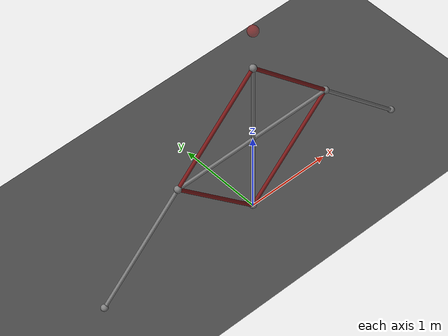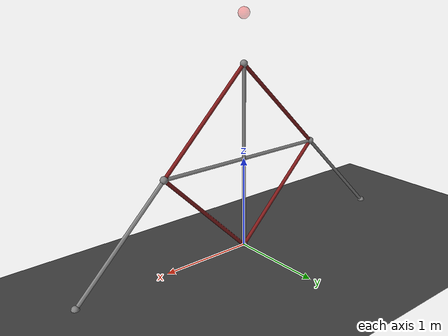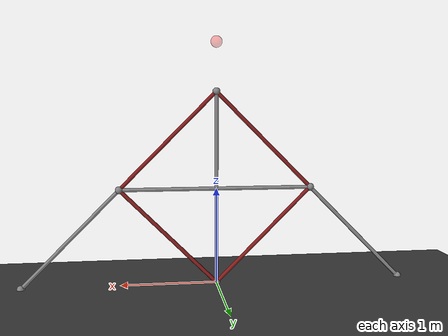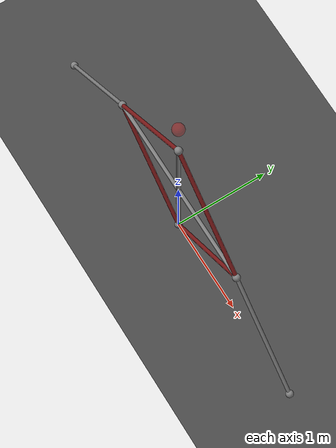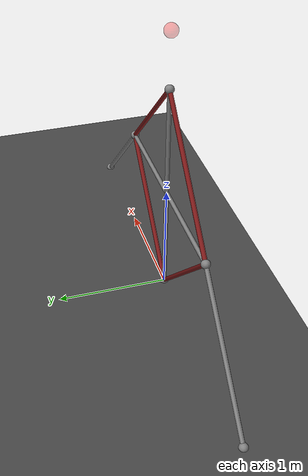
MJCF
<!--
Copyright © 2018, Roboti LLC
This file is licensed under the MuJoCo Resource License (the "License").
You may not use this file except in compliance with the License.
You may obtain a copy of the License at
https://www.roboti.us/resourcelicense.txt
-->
<mujoco model="dbar">

    <option timestep="0.02" iterations="50" solver="Newton" tolerance="1e-10" gravity = "0 0 0" collision="predefined" viscosity="0.1"/>

    <size njmax="100" nconmax="20" nstack="400"/>

    <visual>
        <rgba haze=".3 .3 .3 1"/>
    </visual>

    <default>
        <joint type="hinge" pos="0 0 0" axis="0 1 0" limited="false" range="-180 180" damping="0"/>
        <motor ctrllimited="false" ctrlrange="-1 1"/>
		<tendon stiffness="0" damping=".1"/>
		<geom size="0.02"/>
		<site size="0.04"/>
    </default>

    <asset>
        <texture type="skybox" builtin="gradient" rgb1="0.6 0.6 0.6" rgb2="0 0 0" width="512" height="512"/>
        <texture name="texplane" type="2d" builtin="checker" rgb1=".25 .25 .25" rgb2=".3 .3 .3" width="512" height="512" mark="cross" markrgb=".8 .8 .8"/>
        <material name="matplane" reflectance="0.3" texture="texplane" texrepeat="1 1" texuniform="true"/>
    </asset>

    <worldbody>
        <geom name="floor" pos="0 0 0" size="0 0 1" type="plane" material="matplane"/>
        <light directional="true" diffuse=".8 .8 .8" specular=".2 .2 .2" pos="0 0 5" dir="0 0 -1"/>

        <site name="s0" pos="0 0 0"/>
		<site name="s4" pos="2 0 0"/>
		<site name="s5" pos="-2 0 0"/>
        <site name="target" pos="0 0 2.5" size="0.06" rgba="1 0 0 .3"/>

        <body pos="0 0 0">
            <geom name="bar1" type="capsule" fromto="0 0 0  -1 0 1" rgba=".5 .1 .1 1" mass="1"/>
            <site name="b1s" pos="0 0 0"/>
			<site name="b1e" pos="-1 0 1"/>
			<joint name="bottom1"/>
            <body pos="-1 0 1">
                <geom name="bar2" type="capsule" fromto="0 0 0  1 0 1" rgba=".5 .1 .1 1" mass="1"/>
                <joint name="left"/>
                <site name="b2e" pos="1 0 1"/>
				<body name="bar3" pos="1 0 1">
					<geom name="bar3" type="capsule" fromto="0 0 0  1 0 -1" rgba=".5 .1 .1 1" mass="1"/>
					<joint name="top"/>
					<site name="b3e" pos="1 0 -1"/>
				</body>
            </body>
			<body name="bar4" pos="0 0 0">
                <geom name="bar4" type="capsule" fromto="0 0 0  1 0 1" rgba=".5 .1 .1 1" mass="1"/>
				<joint name="bottom2"/>
            </body>
        </body>
    </worldbody>

	<equality>
		<connect active="true" name='1bar34' body1='bar3' body2='bar4' anchor='1 -0.05 -1'/>
		<connect active="true" name='2bar34' body1='bar3' body2='bar4' anchor='1 0.05 -1'/>
	</equality>

    <tendon>
        <spatial name="S1" width="0.02">
            <site site="b1s"/>
            <site site="b2e"/>
        </spatial>
		<spatial name="S2" width="0.02">
            <site site="b1e"/>
            <site site="b3e"/>
        </spatial>
		<spatial name="S3" width="0.02">
            <site site="b3e"/>
            <site site="s4"/>
        </spatial>
		<spatial name="S4" width="0.02">
            <site site="b1e"/>
            <site site="s5"/>
        </spatial>
    </tendon>

    <actuator>
        <motor tendon="S1" gear="1"/>
        <motor tendon="S2" gear="1"/>
		<motor tendon="S3" gear="1"/>
        <motor tendon="S4" gear="1"/>
    </actuator>
</mujoco>
